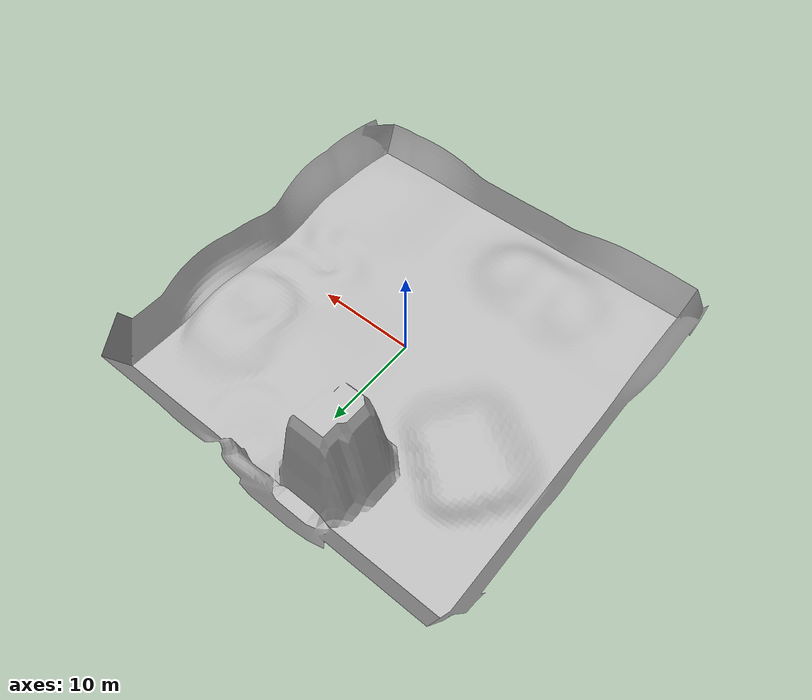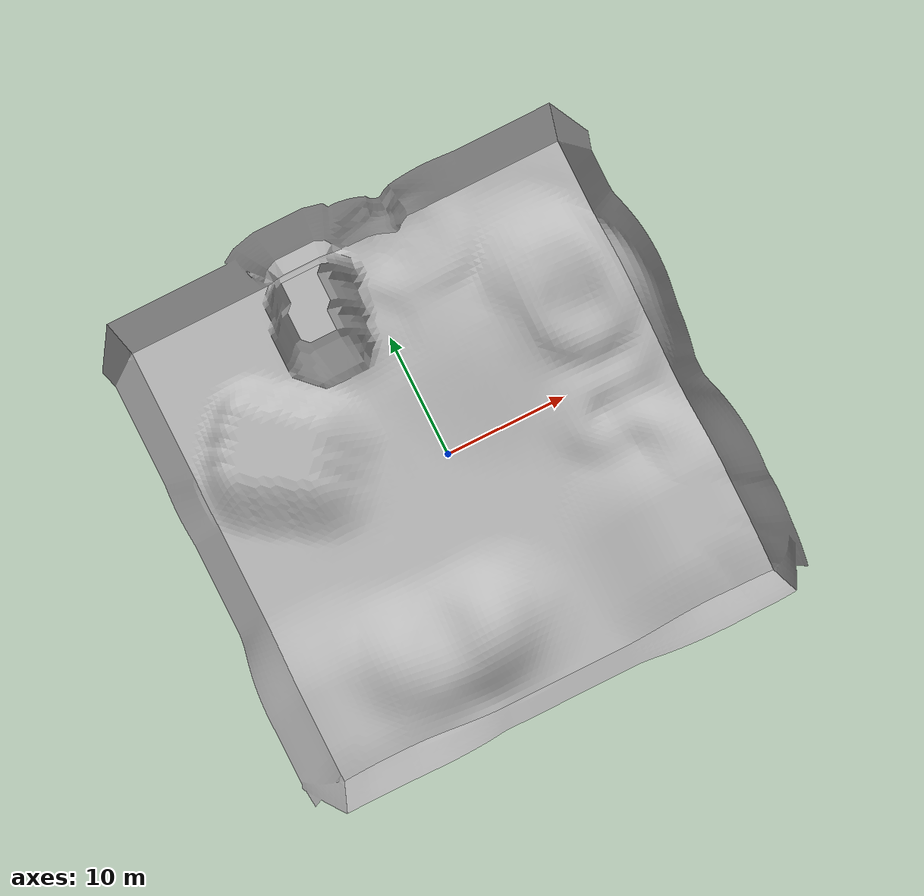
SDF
<sdf version='1.6'>
  <world name='default'>
    <include>
      <uri>model://sun</uri>
    </include>

    <include>
      <name>terrain</name>
      <uri>model://terrain</uri>
      <pose>0 0 0 0 0 0</pose>
    </include>

    <gui fullscreen='0'>
      <camera name='user_camera'>
        <pose frame=''>9.0 -12.0 6.0 0.0 0.3 2.2</pose>
        <view_controller>orbit</view_controller>
        <projection_type>perspective</projection_type>
      </camera>
    </gui>

  </world>
</sdf>

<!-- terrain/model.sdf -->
<sdf version="1.5">
  <model name="terrain">
    <pose>0 0 0 0 0 0</pose>
    <static>true</static>
    <link name="body">
      <visual name="visual">
        <geometry>
          <mesh><uri>model://terrain/media/terrain.dae</uri></mesh>
        </geometry>
	<material>
          <script>
            <uri>model://terrain/media/scripts</uri>
            <uri>model://terrain/media/Textures</uri>
            <name>RepeatedGrass/Diffuse</name>
          </script>
        </material>
      </visual>
      <collision name="collision">
        <geometry>
          <mesh><uri>model://terrain/media/terrain.dae</uri></mesh>
        </geometry>
      </collision>
    </link>
  </model>
</sdf>
